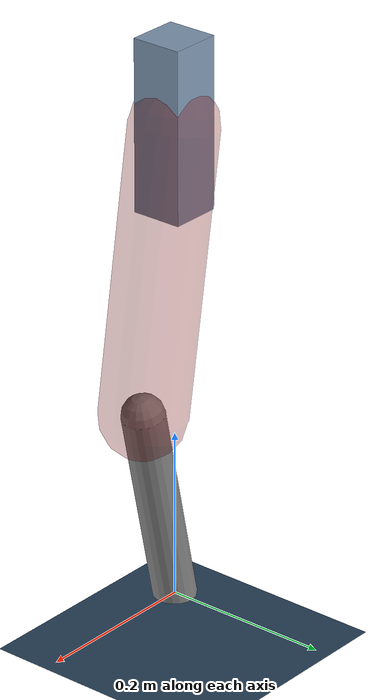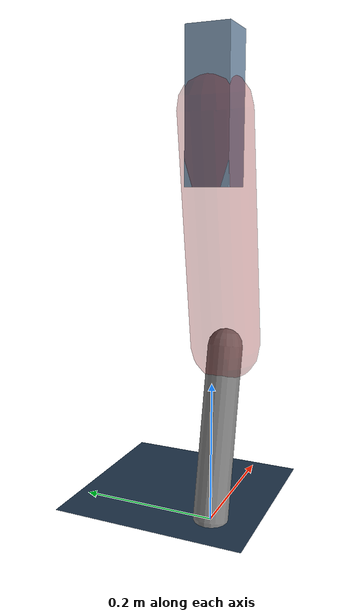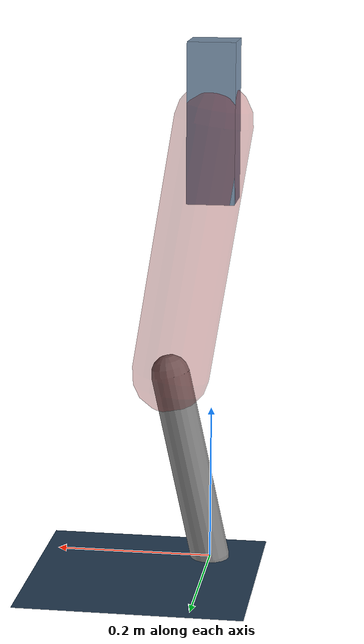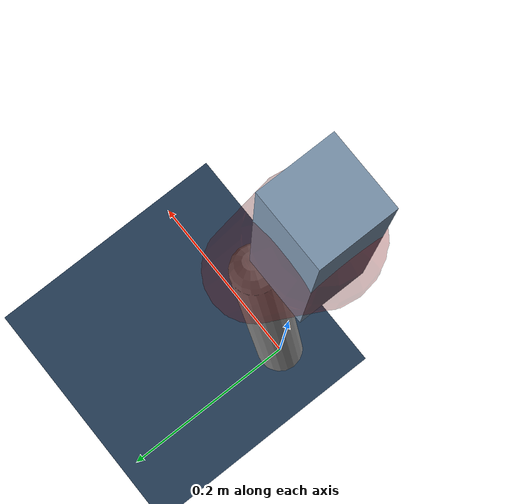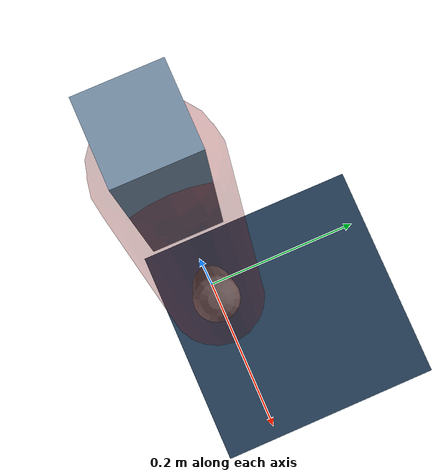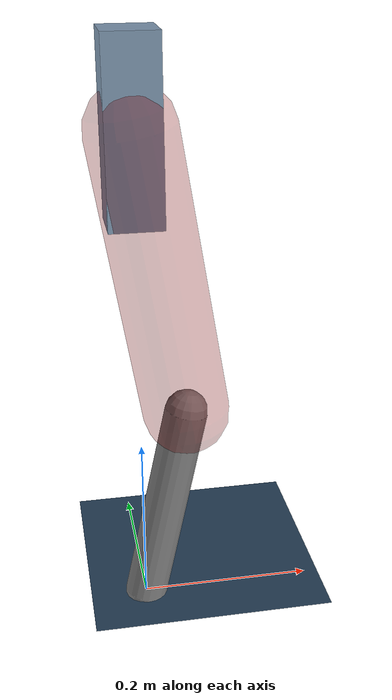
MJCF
<mujoco model="Hopper2D">
	<compiler inertiafromgeom="true" angle="radian" />
	<option timestep="0.001" integrator="implicit" cone="elliptic" solver="Newton" tolerance="1e-10" />

	<default>
		<geom contype="1" conaffinity="1" condim="3" friction="2 0.005 0.0001" solref="0.005 1" />
		<joint limited="true" damping="0.1" />
	</default>

	<asset>
		<texture name="skybox" type="skybox" builtin="gradient" rgb1=".4 .6 .8" rgb2="0 0 0" width="800" height="800" />
		<texture name="grid" type="2d" builtin="checker" rgb1=".1 .2 .3" rgb2=".2 .3 .4" width="300" height="300" mark="edge" markrgb=".2 .3 .4" />
		<material name="ground" texture="grid" texrepeat="1 1" texuniform="true" reflectance="0.1" />
		<material name="leg" rgba="0.5 0.6 0.7 1" />
	</asset>

	<worldbody>

		<geom name="floor" type="plane" size="5 5 0.25" material="ground" />

		<light directional="false" diffuse="0.8 0.8 0.8" specular="0.3 0.3 0.3" pos="0 0 2" dir="0 0 -1" />
		<light mode="targetbodycom" target="base" directional="false" diffuse="0.8 0.8 0.8" specular="0.3 0.3 0.3" pos="0 0 2" dir="0 0 -1" />

		<camera name="fixed" pos="0 -2 1" xyaxes="1 0 0 0 0 1" />
		<camera name="tracking" mode="trackcom" pos="0 -3 1" />

		<body name="root" pos="0 0 0.5682891700625041">
			<joint name="slide_x" type="slide" axis="1 0 0" range="-100 100" />
			<joint name="slide_z" type="slide" axis="0 0 1" range="0 10" />

			<body name="base" pos="0 0 0">
				<geom name="torso" type="box" size="0.03 0.03 0.1" mass="3.482" material="leg" />

				<body name="link1" pos="0 0 0" euler="0 1.4093961938227026 0">
					<joint type="hinge" axis="0 -1 0" pos="0 0 0" name="hinge1" limited="true" range="-3.14 3.14" stiffness="0" damping="0.1" />
					<geom name="thigh" type="capsule" fromto="0 0 0 0.32974349830524535 0 0" size="0.05" rgba="0.5 0 0 0.3" mass="1.0701074454241624" />

					<body name="link2" pos="0.32974349830524535 0 0" euler="0 0.3762489927824774 0">
						<joint type="hinge" axis="0 -1 0" pos="0 0 0" name="hinge2" limited="true" range="-3.14 3.14" stiffness="0" damping="0.1" />
						<geom name="shank" type="capsule" fromto="0 0 0 0.24854567175725878 0 0" size="0.025" mass="0.44133653740580703" />

					</body>
				</body>
			</body>
		</body>
	</worldbody>

	<actuator>
		<motor name="torque1" joint="hinge1" ctrlrange="-114.51145444119567 114.51145444119567" ctrllimited="true" gear="1" />
		<motor name="torque2" joint="hinge2" ctrlrange="-141.54445164737356 141.54445164737356" ctrllimited="true" gear="1" />
	</actuator>
</mujoco>
